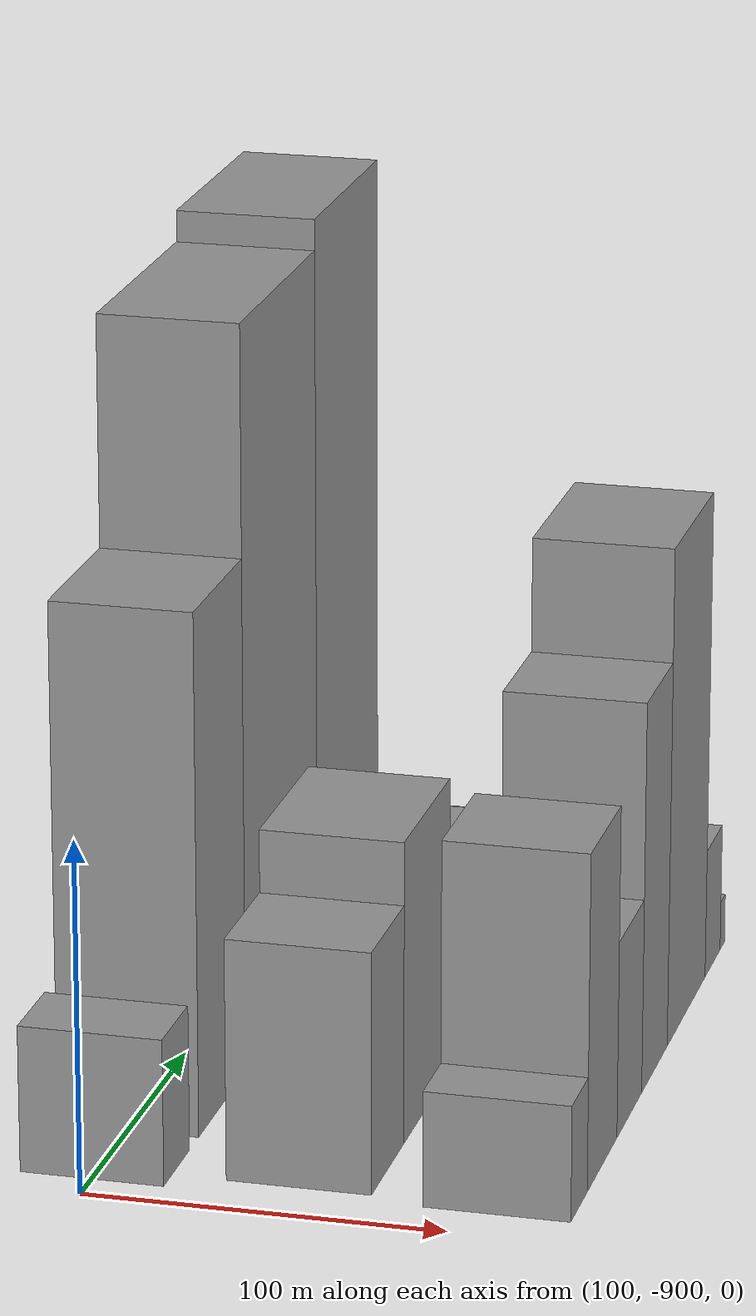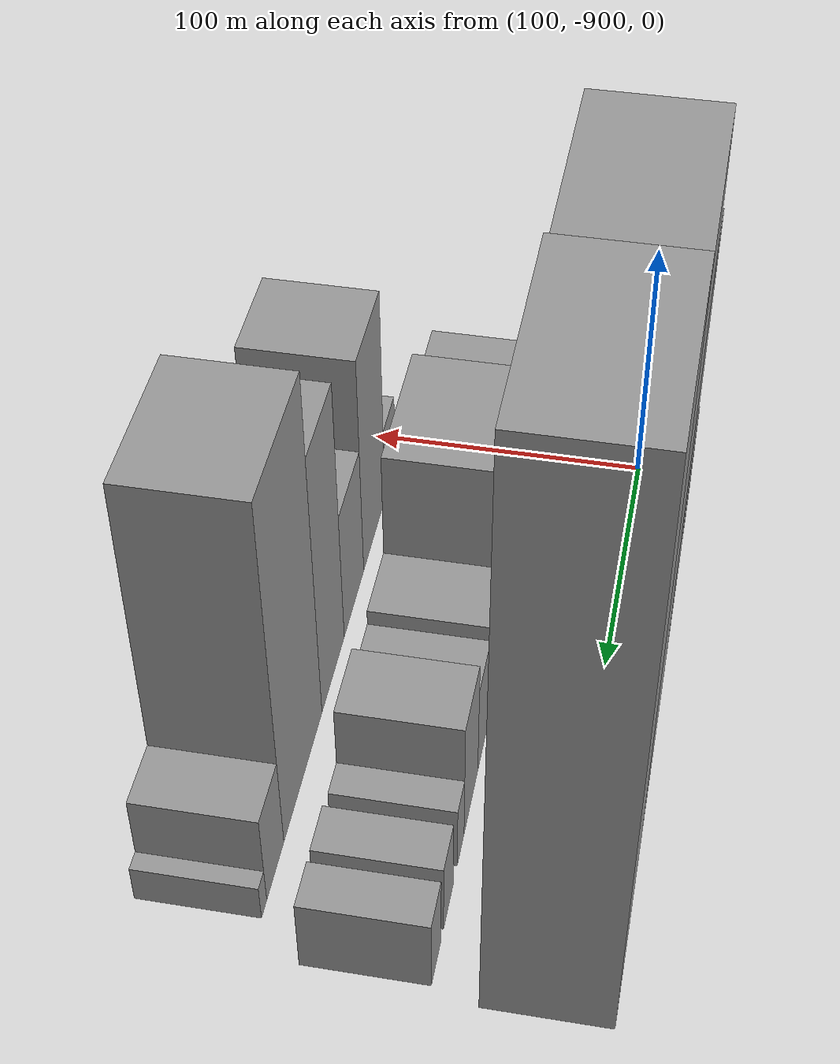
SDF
<sdf version="1.6">
 <world name="default">
  <model name="building_1">
   <static>1</static>
   <pose>100.0000 -877.6321 0 0.000000 0.000000 0.000000</pose>
   <link name="link">
    <pose>0 0 21.00 0 0 0</pose>
    <collision name="collision"><geometry><box><size>40.0000 24.7358 42.0000</size></box></geometry></collision>
    <visual name="visual">
     <cast_shadows>0</cast_shadows>
     <geometry><box><size>40.0000 24.7358 42.0000</size></box></geometry>
     <material>
      <script>
       <uri>model://grey_wall/materials/scripts</uri>
       <uri>model://grey_wall/materials/textures</uri>
       <name>vrc/grey_wall</name>
      </script>
     </material>
    </visual>
   </link>
  </model>
  <model name="building_2">
   <static>1</static>
   <pose>100.0000 -832.5152 0 0.000000 0.000000 0.000000</pose>
   <link name="link">
    <pose>0 0 75.00 0 0 0</pose>
    <collision name="collision"><geometry><box><size>40.0000 47.4980 150.0000</size></box></geometry></collision>
    <visual name="visual">
     <cast_shadows>0</cast_shadows>
     <geometry><box><size>40.0000 47.4980 150.0000</size></box></geometry>
     <material>
      <script>
       <uri>model://grey_wall/materials/scripts</uri>
       <uri>model://grey_wall/materials/textures</uri>
       <name>vrc/grey_wall</name>
      </script>
     </material>
    </visual>
   </link>
  </model>
  <model name="building_3">
   <static>1</static>
   <pose>100.0000 -769.8653 0 0.000000 0.000000 0.000000</pose>
   <link name="link">
    <pose>0 0 108.00 0 0 0</pose>
    <collision name="collision"><geometry><box><size>40.0000 77.8020 216.0000</size></box></geometry></collision>
    <visual name="visual">
     <cast_shadows>0</cast_shadows>
     <geometry><box><size>40.0000 77.8020 216.0000</size></box></geometry>
     <material>
      <script>
       <uri>model://grey_wall/materials/scripts</uri>
       <uri>model://grey_wall/materials/textures</uri>
       <name>vrc/grey_wall</name>
      </script>
     </material>
    </visual>
   </link>
  </model>
  <model name="building_4">
   <static>1</static>
   <pose>100.0000 -695.8126 0 0.000000 0.000000 0.000000</pose>
   <link name="link">
    <pose>0 0 112.50 0 0 0</pose>
    <collision name="collision"><geometry><box><size>40.0000 70.3033 225.0000</size></box></geometry></collision>
    <visual name="visual">
     <cast_shadows>0</cast_shadows>
     <geometry><box><size>40.0000 70.3033 225.0000</size></box></geometry>
     <material>
      <script>
       <uri>model://grey_wall/materials/scripts</uri>
       <uri>model://grey_wall/materials/textures</uri>
       <name>vrc/grey_wall</name>
      </script>
     </material>
    </visual>
   </link>
  </model>
  <model name="building_50">
   <static>1</static>
   <pose>155.0000 -864.3828 0 0.000000 0.000000 0.000000</pose>
   <link name="link">
    <pose>0 0 34.50 0 0 0</pose>
    <collision name="collision"><geometry><box><size>40.0000 35.2345 69.0000</size></box></geometry></collision>
    <visual name="visual">
     <cast_shadows>0</cast_shadows>
     <geometry><box><size>40.0000 35.2345 69.0000</size></box></geometry>
     <material>
      <script>
       <uri>model://grey_wall/materials/scripts</uri>
       <uri>model://grey_wall/materials/textures</uri>
       <name>vrc/grey_wall</name>
      </script>
     </material>
    </visual>
   </link>
  </model>
  <model name="building_51">
   <static>1</static>
   <pose>155.0000 -821.0458 0 0.000000 0.000000 0.000000</pose>
   <link name="link">
    <pose>0 0 43.50 0 0 0</pose>
    <collision name="collision"><geometry><box><size>40.0000 51.4393 87.0000</size></box></geometry></collision>
    <visual name="visual">
     <cast_shadows>0</cast_shadows>
     <geometry><box><size>40.0000 51.4393 87.0000</size></box></geometry>
     <material>
      <script>
       <uri>model://grey_wall/materials/scripts</uri>
       <uri>model://grey_wall/materials/textures</uri>
       <name>vrc/grey_wall</name>
      </script>
     </material>
    </visual>
   </link>
  </model>
  <model name="building_52">
   <static>1</static>
   <pose>155.0000 -782.1121 0 0.000000 0.000000 0.000000</pose>
   <link name="link">
    <pose>0 0 22.50 0 0 0</pose>
    <collision name="collision"><geometry><box><size>40.0000 26.4282 45.0000</size></box></geometry></collision>
    <visual name="visual">
     <cast_shadows>0</cast_shadows>
     <geometry><box><size>40.0000 26.4282 45.0000</size></box></geometry>
     <material>
      <script>
       <uri>model://grey_wall/materials/scripts</uri>
       <uri>model://grey_wall/materials/textures</uri>
       <name>vrc/grey_wall</name>
      </script>
     </material>
    </visual>
   </link>
  </model>
  <model name="building_53">
   <static>1</static>
   <pose>155.0000 -758.0304 0 0.000000 0.000000 0.000000</pose>
   <link name="link">
    <pose>0 0 19.50 0 0 0</pose>
    <collision name="collision"><geometry><box><size>40.0000 21.7352 39.0000</size></box></geometry></collision>
    <visual name="visual">
     <cast_shadows>0</cast_shadows>
     <geometry><box><size>40.0000 21.7352 39.0000</size></box></geometry>
     <material>
      <script>
       <uri>model://grey_wall/materials/scripts</uri>
       <uri>model://grey_wall/materials/textures</uri>
       <name>vrc/grey_wall</name>
      </script>
     </material>
    </visual>
   </link>
  </model>
  <model name="building_54">
   <static>1</static>
   <pose>155.0000 -734.2248 0 0.000000 0.000000 0.000000</pose>
   <link name="link">
    <pose>0 0 25.50 0 0 0</pose>
    <collision name="collision"><geometry><box><size>40.0000 25.8760 51.0000</size></box></geometry></collision>
    <visual name="visual">
     <cast_shadows>0</cast_shadows>
     <geometry><box><size>40.0000 25.8760 51.0000</size></box></geometry>
     <material>
      <script>
       <uri>model://grey_wall/materials/scripts</uri>
       <uri>model://grey_wall/materials/textures</uri>
       <name>vrc/grey_wall</name>
      </script>
     </material>
    </visual>
   </link>
  </model>
  <model name="building_55">
   <static>1</static>
   <pose>155.0000 -715.2092 0 0.000000 0.000000 0.000000</pose>
   <link name="link">
    <pose>0 0 13.50 0 0 0</pose>
    <collision name="collision"><geometry><box><size>40.0000 12.1551 27.0000</size></box></geometry></collision>
    <visual name="visual">
     <cast_shadows>0</cast_shadows>
     <geometry><box><size>40.0000 12.1551 27.0000</size></box></geometry>
     <material>
      <script>
       <uri>model://grey_wall/materials/scripts</uri>
       <uri>model://grey_wall/materials/textures</uri>
       <name>vrc/grey_wall</name>
      </script>
     </material>
    </visual>
   </link>
  </model>
  <model name="building_56">
   <static>1</static>
   <pose>155.0000 -693.7703 0 0.000000 0.000000 0.000000</pose>
   <link name="link">
    <pose>0 0 15.00 0 0 0</pose>
    <collision name="collision"><geometry><box><size>40.0000 16.7228 30.0000</size></box></geometry></collision>
    <visual name="visual">
     <cast_shadows>0</cast_shadows>
     <geometry><box><size>40.0000 16.7228 30.0000</size></box></geometry>
     <material>
      <script>
       <uri>model://grey_wall/materials/scripts</uri>
       <uri>model://grey_wall/materials/textures</uri>
       <name>vrc/grey_wall</name>
      </script>
     </material>
    </visual>
   </link>
  </model>
  <model name="building_57">
   <static>1</static>
   <pose>155.0000 -673.3801 0 0.000000 0.000000 0.000000</pose>
   <link name="link">
    <pose>0 0 15.00 0 0 0</pose>
    <collision name="collision"><geometry><box><size>40.0000 16.0576 30.0000</size></box></geometry></collision>
    <visual name="visual">
     <cast_shadows>0</cast_shadows>
     <geometry><box><size>40.0000 16.0576 30.0000</size></box></geometry>
     <material>
      <script>
       <uri>model://grey_wall/materials/scripts</uri>
       <uri>model://grey_wall/materials/textures</uri>
       <name>vrc/grey_wall</name>
      </script>
     </material>
    </visual>
   </link>
  </model>
  <model name="building_102">
   <static>1</static>
   <pose>210.0000 -876.1059 0 0.000000 0.000000 0.000000</pose>
   <link name="link">
    <pose>0 0 16.50 0 0 0</pose>
    <collision name="collision"><geometry><box><size>40.0000 19.7881 33.0000</size></box></geometry></collision>
    <visual name="visual">
     <cast_shadows>0</cast_shadows>
     <geometry><box><size>40.0000 19.7881 33.0000</size></box></geometry>
     <material>
      <script>
       <uri>model://grey_wall/materials/scripts</uri>
       <uri>model://grey_wall/materials/textures</uri>
       <name>vrc/grey_wall</name>
      </script>
     </material>
    </visual>
   </link>
  </model>
  <model name="building_103">
   <static>1</static>
   <pose>210.0000 -847.5494 0 0.000000 0.000000 0.000000</pose>
   <link name="link">
    <pose>0 0 48.00 0 0 0</pose>
    <collision name="collision"><geometry><box><size>40.0000 37.3250 96.0000</size></box></geometry></collision>
    <visual name="visual">
     <cast_shadows>0</cast_shadows>
     <geometry><box><size>40.0000 37.3250 96.0000</size></box></geometry>
     <material>
      <script>
       <uri>model://grey_wall/materials/scripts</uri>
       <uri>model://grey_wall/materials/textures</uri>
       <name>vrc/grey_wall</name>
      </script>
     </material>
    </visual>
   </link>
  </model>
  <model name="building_104">
   <static>1</static>
   <pose>210.0000 -812.7243 0 0.000000 0.000000 0.000000</pose>
   <link name="link">
    <pose>0 0 28.50 0 0 0</pose>
    <collision name="collision"><geometry><box><size>40.0000 32.3252 57.0000</size></box></geometry></collision>
    <visual name="visual">
     <cast_shadows>0</cast_shadows>
     <geometry><box><size>40.0000 32.3252 57.0000</size></box></geometry>
     <material>
      <script>
       <uri>model://grey_wall/materials/scripts</uri>
       <uri>model://grey_wall/materials/textures</uri>
       <name>vrc/grey_wall</name>
      </script>
     </material>
    </visual>
   </link>
  </model>
  <model name="building_105">
   <static>1</static>
   <pose>210.0000 -779.2583 0 0.000000 0.000000 0.000000</pose>
   <link name="link">
    <pose>0 0 57.00 0 0 0</pose>
    <collision name="collision"><geometry><box><size>40.0000 34.6068 114.0000</size></box></geometry></collision>
    <visual name="visual">
     <cast_shadows>0</cast_shadows>
     <geometry><box><size>40.0000 34.6068 114.0000</size></box></geometry>
     <material>
      <script>
       <uri>model://grey_wall/materials/scripts</uri>
       <uri>model://grey_wall/materials/textures</uri>
       <name>vrc/grey_wall</name>
      </script>
     </material>
    </visual>
   </link>
  </model>
  <model name="building_106">
   <static>1</static>
   <pose>210.0000 -735.0604 0 0.000000 0.000000 0.000000</pose>
   <link name="link">
    <pose>0 0 73.50 0 0 0</pose>
    <collision name="collision"><geometry><box><size>40.0000 53.7890 147.0000</size></box></geometry></collision>
    <visual name="visual">
     <cast_shadows>0</cast_shadows>
     <geometry><box><size>40.0000 53.7890 147.0000</size></box></geometry>
     <material>
      <script>
       <uri>model://grey_wall/materials/scripts</uri>
       <uri>model://grey_wall/materials/textures</uri>
       <name>vrc/grey_wall</name>
      </script>
     </material>
    </visual>
   </link>
  </model>
  <model name="building_107">
   <static>1</static>
   <pose>210.0000 -697.0612 0 0.000000 0.000000 0.000000</pose>
   <link name="link">
    <pose>0 0 19.50 0 0 0</pose>
    <collision name="collision"><geometry><box><size>40.0000 22.2094 39.0000</size></box></geometry></collision>
    <visual name="visual">
     <cast_shadows>0</cast_shadows>
     <geometry><box><size>40.0000 22.2094 39.0000</size></box></geometry>
     <material>
      <script>
       <uri>model://grey_wall/materials/scripts</uri>
       <uri>model://grey_wall/materials/textures</uri>
       <name>vrc/grey_wall</name>
      </script>
     </material>
    </visual>
   </link>
  </model>
  <model name="building_108">
   <static>1</static>
   <pose>210.0000 -682.6521 0 0.000000 0.000000 0.000000</pose>
   <link name="link">
    <pose>0 0 7.50 0 0 0</pose>
    <collision name="collision"><geometry><box><size>40.0000 6.6087 15.0000</size></box></geometry></collision>
    <visual name="visual">
     <cast_shadows>0</cast_shadows>
     <geometry><box><size>40.0000 6.6087 15.0000</size></box></geometry>
     <material>
      <script>
       <uri>model://grey_wall/materials/scripts</uri>
       <uri>model://grey_wall/materials/textures</uri>
       <name>vrc/grey_wall</name>
      </script>
     </material>
    </visual>
   </link>
  </model>
 </world>
</sdf>
